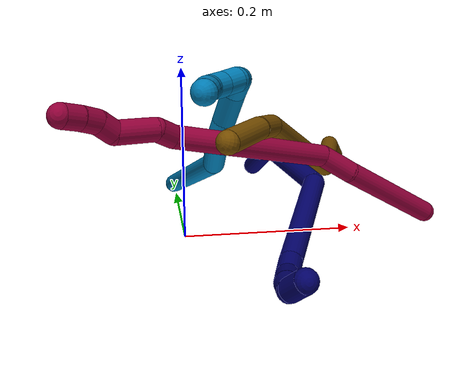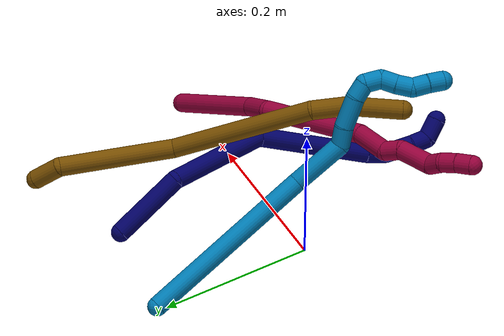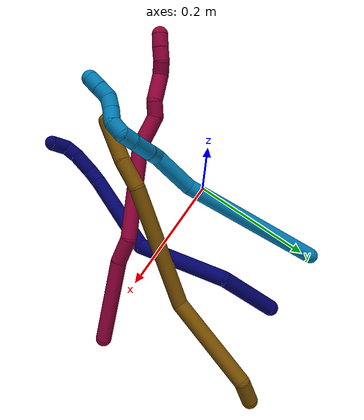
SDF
<sdf version="1.7">
 <world name="default">
  <model name="7">
   <static>0</static>
   <link name="7">
    <collision name="collision-cylinder-e_1_1_4">
     <pose>0.001157 0.00813 -0.047289 -2.97133 0.02411 -0.280687</pose>
     <geometry><cylinder><radius>0.0125</radius><length>0.095993</length></cylinder></geometry>
     <surface>
      <friction><ode><mu>1.16</mu><mu2>1.16</mu2><slip1>0</slip1><slip2>0</slip2></ode></friction>
      <contact><ode><kp>1e+06</kp><kd>1</kd><max_vel>0</max_vel><min_depth>0.001</min_depth></ode></contact>
     </surface>
    </collision>
    <visual name="visual-cylinder-e_1_1_4">
     <pose>0.001157 0.00813 -0.047289 -2.97133 0.02411 -0.280687</pose>
     <geometry><cylinder><radius>0.0125</radius><length>0.095993</length></cylinder></geometry>
     <material><ambient>0.003922 0 0.403922 1</ambient></material>
    </visual>
    <collision name="collision-cylinder-e_2_4_5">
     <pose>-0.016366 -0.007334 -0.159147 2.79126 -0.26532 -1.29213</pose>
     <geometry><cylinder><radius>0.0125</radius><length>0.142476</length></cylinder></geometry>
     <surface>
      <friction><ode><mu>1.16</mu><mu2>1.16</mu2><slip1>0</slip1><slip2>0</slip2></ode></friction>
      <contact><ode><kp>1e+06</kp><kd>1</kd><max_vel>0</max_vel><min_depth>0.001</min_depth></ode></contact>
     </surface>
    </collision>
    <visual name="visual-cylinder-e_2_4_5">
     <pose>-0.016366 -0.007334 -0.159147 2.79126 -0.26532 -1.29213</pose>
     <geometry><cylinder><radius>0.0125</radius><length>0.142476</length></cylinder></geometry>
     <material><ambient>0.003922 0 0.403922 1</ambient></material>
    </visual>
    <collision name="collision-cylinder-e_3_5_6">
     <pose>-0.019154 -0.080722 -0.27674 2.38758 0.215089 0.532391</pose>
     <geometry><cylinder><radius>0.0125</radius><length>0.14891</length></cylinder></geometry>
     <surface>
      <friction><ode><mu>1.16</mu><mu2>1.16</mu2><slip1>0</slip1><slip2>0</slip2></ode></friction>
      <contact><ode><kp>1e+06</kp><kd>1</kd><max_vel>0</max_vel><min_depth>0.001</min_depth></ode></contact>
     </surface>
    </collision>
    <visual name="visual-cylinder-e_3_5_6">
     <pose>-0.019154 -0.080722 -0.27674 2.38758 0.215089 0.532391</pose>
     <geometry><cylinder><radius>0.0125</radius><length>0.14891</length></cylinder></geometry>
     <material><ambient>0.003922 0 0.403922 1</ambient></material>
    </visual>
    <collision name="collision-cylinder-e_4_6_7">
     <pose>-0.000645 -0.137986 -0.340349 2.52711 0.199436 0.610921</pose>
     <geometry><cylinder><radius>0.0125</radius><length>0.026435</length></cylinder></geometry>
     <surface>
      <friction><ode><mu>1.16</mu><mu2>1.16</mu2><slip1>0</slip1><slip2>0</slip2></ode></friction>
      <contact><ode><kp>1e+06</kp><kd>1</kd><max_vel>0</max_vel><min_depth>0.001</min_depth></ode></contact>
     </surface>
    </collision>
    <visual name="visual-cylinder-e_4_6_7">
     <pose>-0.000645 -0.137986 -0.340349 2.52711 0.199436 0.610921</pose>
     <geometry><cylinder><radius>0.0125</radius><length>0.026435</length></cylinder></geometry>
     <material><ambient>0.003922 0 0.403922 1</ambient></material>
    </visual>
    <collision name="collision-cylinder-e_5_7_8">
     <pose>0.006281 -0.149434 -0.36851 2.91901 0.234607 1.62386</pose>
     <geometry><cylinder><radius>0.0125</radius><length>0.037055</length></cylinder></geometry>
     <surface>
      <friction><ode><mu>1.16</mu><mu2>1.16</mu2><slip1>0</slip1><slip2>0</slip2></ode></friction>
      <contact><ode><kp>1e+06</kp><kd>1</kd><max_vel>0</max_vel><min_depth>0.001</min_depth></ode></contact>
     </surface>
    </collision>
    <visual name="visual-cylinder-e_5_7_8">
     <pose>0.006281 -0.149434 -0.36851 2.91901 0.234607 1.62386</pose>
     <geometry><cylinder><radius>0.0125</radius><length>0.037055</length></cylinder></geometry>
     <material><ambient>0.003922 0 0.403922 1</ambient></material>
    </visual>
    <collision name="collision-cylinder-e_6_8_9">
     <pose>0.01131 -0.156104 -0.39675 2.89428 0.065563 0.515924</pose>
     <geometry><cylinder><radius>0.0125</radius><length>0.022047</length></cylinder></geometry>
     <surface>
      <friction><ode><mu>1.16</mu><mu2>1.16</mu2><slip1>0</slip1><slip2>0</slip2></ode></friction>
      <contact><ode><kp>1e+06</kp><kd>1</kd><max_vel>0</max_vel><min_depth>0.001</min_depth></ode></contact>
     </surface>
    </collision>
    <visual name="visual-cylinder-e_6_8_9">
     <pose>0.01131 -0.156104 -0.39675 2.89428 0.065563 0.515924</pose>
     <geometry><cylinder><radius>0.0125</radius><length>0.022047</length></cylinder></geometry>
     <material><ambient>0.003922 0 0.403922 1</ambient></material>
    </visual>
    <collision name="collision-cylinder-e_7_9_2">
     <pose>0.00943 -0.153222 -0.41948 -2.70872 -0.193367 0.830833</pose>
     <geometry><cylinder><radius>0.0125</radius><length>0.027084</length></cylinder></geometry>
     <surface>
      <friction><ode><mu>1.16</mu><mu2>1.16</mu2><slip1>0</slip1><slip2>0</slip2></ode></friction>
      <contact><ode><kp>1e+06</kp><kd>1</kd><max_vel>0</max_vel><min_depth>0.001</min_depth></ode></contact>
     </surface>
    </collision>
    <visual name="visual-cylinder-e_7_9_2">
     <pose>0.00943 -0.153222 -0.41948 -2.70872 -0.193367 0.830833</pose>
     <geometry><cylinder><radius>0.0125</radius><length>0.027084</length></cylinder></geometry>
     <material><ambient>0.003922 0 0.403922 1</ambient></material>
    </visual>
    <collision name="collision-sphere-2">
     <pose>0.006828 -0.147647 -0.431544 0 -0 0</pose>
     <geometry><sphere><radius>0.0125</radius></sphere></geometry>
     <surface>
      <friction><ode><mu>1.16</mu><mu2>1.16</mu2><slip1>0</slip1><slip2>0</slip2></ode></friction>
      <contact><ode><kp>1e+06</kp><kd>1</kd><max_vel>0</max_vel><min_depth>0.001</min_depth></ode></contact>
     </surface>
    </collision>
    <visual name="visual-sphere-2">
     <pose>0.006828 -0.147647 -0.431544 0 -0 0</pose>
     <geometry><sphere><radius>0.0125</radius></sphere></geometry>
     <material><ambient>0.003922 0 0.403922 1</ambient></material>
    </visual>
    <collision name="collision-sphere-9">
     <pose>0.012032 -0.158797 -0.407416 0 -0 0</pose>
     <geometry><sphere><radius>0.0125</radius></sphere></geometry>
     <surface>
      <friction><ode><mu>1.16</mu><mu2>1.16</mu2><slip1>0</slip1><slip2>0</slip2></ode></friction>
      <contact><ode><kp>1e+06</kp><kd>1</kd><max_vel>0</max_vel><min_depth>0.001</min_depth></ode></contact>
     </surface>
    </collision>
    <visual name="visual-sphere-9">
     <pose>0.012032 -0.158797 -0.407416 0 -0 0</pose>
     <geometry><sphere><radius>0.0125</radius></sphere></geometry>
     <material><ambient>0.003922 0 0.403922 1</ambient></material>
    </visual>
    <collision name="collision-sphere-4">
     <pose>0.002314 0.01626 -0.094578 0 -0 0</pose>
     <geometry><sphere><radius>0.0125</radius></sphere></geometry>
     <surface>
      <friction><ode><mu>1.16</mu><mu2>1.16</mu2><slip1>0</slip1><slip2>0</slip2></ode></friction>
      <contact><ode><kp>1e+06</kp><kd>1</kd><max_vel>0</max_vel><min_depth>0.001</min_depth></ode></contact>
     </surface>
    </collision>
    <visual name="visual-sphere-4">
     <pose>0.002314 0.01626 -0.094578 0 -0 0</pose>
     <geometry><sphere><radius>0.0125</radius></sphere></geometry>
     <material><ambient>0.003922 0 0.403922 1</ambient></material>
    </visual>
    <collision name="collision-sphere-1">
     <geometry><sphere><radius>0.0125</radius></sphere></geometry>
     <surface>
      <friction><ode><mu>1.16</mu><mu2>1.16</mu2><slip1>0</slip1><slip2>0</slip2></ode></friction>
      <contact><ode><kp>1e+06</kp><kd>1</kd><max_vel>0</max_vel><min_depth>0.001</min_depth></ode></contact>
     </surface>
    </collision>
    <visual name="visual-sphere-1">
     <geometry><sphere><radius>0.0125</radius></sphere></geometry>
     <material><ambient>0.003922 0 0.403922 1</ambient></material>
    </visual>
    <collision name="collision-sphere-8">
     <pose>0.010588 -0.153411 -0.386085 0 -0 0</pose>
     <geometry><sphere><radius>0.0125</radius></sphere></geometry>
     <surface>
      <friction><ode><mu>1.16</mu><mu2>1.16</mu2><slip1>0</slip1><slip2>0</slip2></ode></friction>
      <contact><ode><kp>1e+06</kp><kd>1</kd><max_vel>0</max_vel><min_depth>0.001</min_depth></ode></contact>
     </surface>
    </collision>
    <visual name="visual-sphere-8">
     <pose>0.010588 -0.153411 -0.386085 0 -0 0</pose>
     <geometry><sphere><radius>0.0125</radius></sphere></geometry>
     <material><ambient>0.003922 0 0.403922 1</ambient></material>
    </visual>
    <collision name="collision-sphere-5">
     <pose>-0.035046 -0.030927 -0.223717 0 -0 0</pose>
     <geometry><sphere><radius>0.0125</radius></sphere></geometry>
     <surface>
      <friction><ode><mu>1.16</mu><mu2>1.16</mu2><slip1>0</slip1><slip2>0</slip2></ode></friction>
      <contact><ode><kp>1e+06</kp><kd>1</kd><max_vel>0</max_vel><min_depth>0.001</min_depth></ode></contact>
     </surface>
    </collision>
    <visual name="visual-sphere-5">
     <pose>-0.035046 -0.030927 -0.223717 0 -0 0</pose>
     <geometry><sphere><radius>0.0125</radius></sphere></geometry>
     <material><ambient>0.003922 0 0.403922 1</ambient></material>
    </visual>
    <collision name="collision-sphere-6">
     <pose>-0.003263 -0.130517 -0.329763 0 -0 0</pose>
     <geometry><sphere><radius>0.0125</radius></sphere></geometry>
     <surface>
      <friction><ode><mu>1.16</mu><mu2>1.16</mu2><slip1>0</slip1><slip2>0</slip2></ode></friction>
      <contact><ode><kp>1e+06</kp><kd>1</kd><max_vel>0</max_vel><min_depth>0.001</min_depth></ode></contact>
     </surface>
    </collision>
    <visual name="visual-sphere-6">
     <pose>-0.003263 -0.130517 -0.329763 0 -0 0</pose>
     <geometry><sphere><radius>0.0125</radius></sphere></geometry>
     <material><ambient>0.003922 0 0.403922 1</ambient></material>
    </visual>
    <collision name="collision-sphere-7">
     <pose>0.001974 -0.145456 -0.350935 0 -0 0</pose>
     <geometry><sphere><radius>0.0125</radius></sphere></geometry>
     <surface>
      <friction><ode><mu>1.16</mu><mu2>1.16</mu2><slip1>0</slip1><slip2>0</slip2></ode></friction>
      <contact><ode><kp>1e+06</kp><kd>1</kd><max_vel>0</max_vel><min_depth>0.001</min_depth></ode></contact>
     </surface>
    </collision>
    <visual name="visual-sphere-7">
     <pose>0.001974 -0.145456 -0.350935 0 -0 0</pose>
     <geometry><sphere><radius>0.0125</radius></sphere></geometry>
     <material><ambient>0.003922 0 0.403922 1</ambient></material>
    </visual>
    <inertial>
     <pose>-0.008705 -0.058122 -0.222368 0 -0 0</pose>
     <mass>0.5</mass>
     <inertia>
      <ixx>0.000281</ixx>
      <ixy>0</ixy>
      <ixz>0</ixz>
      <iyy>-0.000388</iyy>
      <iyz>0</iyz>
      <izz>0.000226</izz>
     </inertia>
    </inertial>
   </link>
   <pose>0.112621 0.20486 0.036252 1.89291 -0.339179 3.10781</pose>
  </model>
  <model name="8">
   <static>0</static>
   <link name="8">
    <collision name="collision-cylinder-e_1_1_4">
     <pose>-0.035453 -0.045202 -0.036002 2.24338 -0.550297 -1.05977</pose>
     <geometry><cylinder><radius>0.0125</radius><length>0.135592</length></cylinder></geometry>
     <surface>
      <friction><ode><mu>1.16</mu><mu2>1.16</mu2><slip1>0</slip1><slip2>0</slip2></ode></friction>
      <contact><ode><kp>1e+06</kp><kd>1</kd><max_vel>0</max_vel><min_depth>0.001</min_depth></ode></contact>
     </surface>
    </collision>
    <visual name="visual-cylinder-e_1_1_4">
     <pose>-0.035453 -0.045202 -0.036002 2.24338 -0.550297 -1.05977</pose>
     <geometry><cylinder><radius>0.0125</radius><length>0.135592</length></cylinder></geometry>
     <material><ambient>0.584314 0 0.227451 1</ambient></material>
    </visual>
    <collision name="collision-cylinder-e_2_4_5">
     <pose>-0.081154 -0.107026 -0.079457 1.99229 -0.512422 -0.768847</pose>
     <geometry><cylinder><radius>0.0125</radius><length>0.041803</length></cylinder></geometry>
     <surface>
      <friction><ode><mu>1.16</mu><mu2>1.16</mu2><slip1>0</slip1><slip2>0</slip2></ode></friction>
      <contact><ode><kp>1e+06</kp><kd>1</kd><max_vel>0</max_vel><min_depth>0.001</min_depth></ode></contact>
     </surface>
    </collision>
    <visual name="visual-cylinder-e_2_4_5">
     <pose>-0.081154 -0.107026 -0.079457 1.99229 -0.512422 -0.768847</pose>
     <geometry><cylinder><radius>0.0125</radius><length>0.041803</length></cylinder></geometry>
     <material><ambient>0.584314 0 0.227451 1</ambient></material>
    </visual>
    <collision name="collision-cylinder-e_3_5_6">
     <pose>-0.142541 -0.155053 -0.126209 2.46739 -0.793607 -1.74849</pose>
     <geometry><cylinder><radius>0.0125</radius><length>0.143469</length></cylinder></geometry>
     <surface>
      <friction><ode><mu>1.16</mu><mu2>1.16</mu2><slip1>0</slip1><slip2>0</slip2></ode></friction>
      <contact><ode><kp>1e+06</kp><kd>1</kd><max_vel>0</max_vel><min_depth>0.001</min_depth></ode></contact>
     </surface>
    </collision>
    <visual name="visual-cylinder-e_3_5_6">
     <pose>-0.142541 -0.155053 -0.126209 2.46739 -0.793607 -1.74849</pose>
     <geometry><cylinder><radius>0.0125</radius><length>0.143469</length></cylinder></geometry>
     <material><ambient>0.584314 0 0.227451 1</ambient></material>
    </visual>
    <collision name="collision-cylinder-e_4_6_7">
     <pose>-0.213095 -0.201144 -0.171522 1.95942 -0.885577 -1.23023</pose>
     <geometry><cylinder><radius>0.0125</radius><length>0.050153</length></cylinder></geometry>
     <surface>
      <friction><ode><mu>1.16</mu><mu2>1.16</mu2><slip1>0</slip1><slip2>0</slip2></ode></friction>
      <contact><ode><kp>1e+06</kp><kd>1</kd><max_vel>0</max_vel><min_depth>0.001</min_depth></ode></contact>
     </surface>
    </collision>
    <visual name="visual-cylinder-e_4_6_7">
     <pose>-0.213095 -0.201144 -0.171522 1.95942 -0.885577 -1.23023</pose>
     <geometry><cylinder><radius>0.0125</radius><length>0.050153</length></cylinder></geometry>
     <material><ambient>0.584314 0 0.227451 1</ambient></material>
    </visual>
    <collision name="collision-cylinder-e_5_7_8">
     <pose>-0.238489 -0.221593 -0.186212 2.55537 -0.52099 -1.4469</pose>
     <geometry><cylinder><radius>0.0125</radius><length>0.02402</length></cylinder></geometry>
     <surface>
      <friction><ode><mu>1.16</mu><mu2>1.16</mu2><slip1>0</slip1><slip2>0</slip2></ode></friction>
      <contact><ode><kp>1e+06</kp><kd>1</kd><max_vel>0</max_vel><min_depth>0.001</min_depth></ode></contact>
     </surface>
    </collision>
    <visual name="visual-cylinder-e_5_7_8">
     <pose>-0.238489 -0.221593 -0.186212 2.55537 -0.52099 -1.4469</pose>
     <geometry><cylinder><radius>0.0125</radius><length>0.02402</length></cylinder></geometry>
     <material><ambient>0.584314 0 0.227451 1</ambient></material>
    </visual>
    <collision name="collision-cylinder-e_6_8_9">
     <pose>-0.263031 -0.234651 -0.203914 2.46176 -1.01212 -2.00564</pose>
     <geometry><cylinder><radius>0.0125</radius><length>0.043785</length></cylinder></geometry>
     <surface>
      <friction><ode><mu>1.16</mu><mu2>1.16</mu2><slip1>0</slip1><slip2>0</slip2></ode></friction>
      <contact><ode><kp>1e+06</kp><kd>1</kd><max_vel>0</max_vel><min_depth>0.001</min_depth></ode></contact>
     </surface>
    </collision>
    <visual name="visual-cylinder-e_6_8_9">
     <pose>-0.263031 -0.234651 -0.203914 2.46176 -1.01212 -2.00564</pose>
     <geometry><cylinder><radius>0.0125</radius><length>0.043785</length></cylinder></geometry>
     <material><ambient>0.584314 0 0.227451 1</ambient></material>
    </visual>
    <collision name="collision-cylinder-e_7_9_10">
     <pose>-0.28555 -0.248776 -0.21961 2.34444 -0.392686 -0.882535</pose>
     <geometry><cylinder><radius>0.0125</radius><length>0.020668</length></cylinder></geometry>
     <surface>
      <friction><ode><mu>1.16</mu><mu2>1.16</mu2><slip1>0</slip1><slip2>0</slip2></ode></friction>
      <contact><ode><kp>1e+06</kp><kd>1</kd><max_vel>0</max_vel><min_depth>0.001</min_depth></ode></contact>
     </surface>
    </collision>
    <visual name="visual-cylinder-e_7_9_10">
     <pose>-0.28555 -0.248776 -0.21961 2.34444 -0.392686 -0.882535</pose>
     <geometry><cylinder><radius>0.0125</radius><length>0.020668</length></cylinder></geometry>
     <material><ambient>0.584314 0 0.227451 1</ambient></material>
    </visual>
    <collision name="collision-cylinder-e_8_10_11">
     <pose>-0.295558 -0.259359 -0.233518 2.66317 -0.638731 -1.87069</pose>
     <geometry><cylinder><radius>0.0125</radius><length>0.020307</length></cylinder></geometry>
     <surface>
      <friction><ode><mu>1.16</mu><mu2>1.16</mu2><slip1>0</slip1><slip2>0</slip2></ode></friction>
      <contact><ode><kp>1e+06</kp><kd>1</kd><max_vel>0</max_vel><min_depth>0.001</min_depth></ode></contact>
     </surface>
    </collision>
    <visual name="visual-cylinder-e_8_10_11">
     <pose>-0.295558 -0.259359 -0.233518 2.66317 -0.638731 -1.87069</pose>
     <geometry><cylinder><radius>0.0125</radius><length>0.020307</length></cylinder></geometry>
     <material><ambient>0.584314 0 0.227451 1</ambient></material>
    </visual>
    <collision name="collision-cylinder-e_9_11_2">
     <pose>-0.30832 -0.266565 -0.24747 2.66667 -0.726388 -2.00748</pose>
     <geometry><cylinder><radius>0.0125</radius><length>0.020203</length></cylinder></geometry>
     <surface>
      <friction><ode><mu>1.16</mu><mu2>1.16</mu2><slip1>0</slip1><slip2>0</slip2></ode></friction>
      <contact><ode><kp>1e+06</kp><kd>1</kd><max_vel>0</max_vel><min_depth>0.001</min_depth></ode></contact>
     </surface>
    </collision>
    <visual name="visual-cylinder-e_9_11_2">
     <pose>-0.30832 -0.266565 -0.24747 2.66667 -0.726388 -2.00748</pose>
     <geometry><cylinder><radius>0.0125</radius><length>0.020203</length></cylinder></geometry>
     <material><ambient>0.584314 0 0.227451 1</ambient></material>
    </visual>
    <collision name="collision-sphere-2">
     <pose>-0.315029 -0.270018 -0.254186 0 -0 0</pose>
     <geometry><sphere><radius>0.0125</radius></sphere></geometry>
     <surface>
      <friction><ode><mu>1.16</mu><mu2>1.16</mu2><slip1>0</slip1><slip2>0</slip2></ode></friction>
      <contact><ode><kp>1e+06</kp><kd>1</kd><max_vel>0</max_vel><min_depth>0.001</min_depth></ode></contact>
     </surface>
    </collision>
    <visual name="visual-sphere-2">
     <pose>-0.315029 -0.270018 -0.254186 0 -0 0</pose>
     <geometry><sphere><radius>0.0125</radius></sphere></geometry>
     <material><ambient>0.584314 0 0.227451 1</ambient></material>
    </visual>
    <collision name="collision-sphere-11">
     <pose>-0.301611 -0.263112 -0.240754 0 -0 0</pose>
     <geometry><sphere><radius>0.0125</radius></sphere></geometry>
     <surface>
      <friction><ode><mu>1.16</mu><mu2>1.16</mu2><slip1>0</slip1><slip2>0</slip2></ode></friction>
      <contact><ode><kp>1e+06</kp><kd>1</kd><max_vel>0</max_vel><min_depth>0.001</min_depth></ode></contact>
     </surface>
    </collision>
    <visual name="visual-sphere-11">
     <pose>-0.301611 -0.263112 -0.240754 0 -0 0</pose>
     <geometry><sphere><radius>0.0125</radius></sphere></geometry>
     <material><ambient>0.584314 0 0.227451 1</ambient></material>
    </visual>
    <collision name="collision-sphere-10">
     <pose>-0.289504 -0.255606 -0.226281 0 -0 0</pose>
     <geometry><sphere><radius>0.0125</radius></sphere></geometry>
     <surface>
      <friction><ode><mu>1.16</mu><mu2>1.16</mu2><slip1>0</slip1><slip2>0</slip2></ode></friction>
      <contact><ode><kp>1e+06</kp><kd>1</kd><max_vel>0</max_vel><min_depth>0.001</min_depth></ode></contact>
     </surface>
    </collision>
    <visual name="visual-sphere-10">
     <pose>-0.289504 -0.255606 -0.226281 0 -0 0</pose>
     <geometry><sphere><radius>0.0125</radius></sphere></geometry>
     <material><ambient>0.584314 0 0.227451 1</ambient></material>
    </visual>
    <collision name="collision-sphere-9">
     <pose>-0.281595 -0.241946 -0.212938 0 -0 0</pose>
     <geometry><sphere><radius>0.0125</radius></sphere></geometry>
     <surface>
      <friction><ode><mu>1.16</mu><mu2>1.16</mu2><slip1>0</slip1><slip2>0</slip2></ode></friction>
      <contact><ode><kp>1e+06</kp><kd>1</kd><max_vel>0</max_vel><min_depth>0.001</min_depth></ode></contact>
     </surface>
    </collision>
    <visual name="visual-sphere-9">
     <pose>-0.281595 -0.241946 -0.212938 0 -0 0</pose>
     <geometry><sphere><radius>0.0125</radius></sphere></geometry>
     <material><ambient>0.584314 0 0.227451 1</ambient></material>
    </visual>
    <collision name="collision-sphere-4">
     <pose>-0.070907 -0.090404 -0.072004 0 -0 0</pose>
     <geometry><sphere><radius>0.0125</radius></sphere></geometry>
     <surface>
      <friction><ode><mu>1.16</mu><mu2>1.16</mu2><slip1>0</slip1><slip2>0</slip2></ode></friction>
      <contact><ode><kp>1e+06</kp><kd>1</kd><max_vel>0</max_vel><min_depth>0.001</min_depth></ode></contact>
     </surface>
    </collision>
    <visual name="visual-sphere-4">
     <pose>-0.070907 -0.090404 -0.072004 0 -0 0</pose>
     <geometry><sphere><radius>0.0125</radius></sphere></geometry>
     <material><ambient>0.584314 0 0.227451 1</ambient></material>
    </visual>
    <collision name="collision-sphere-1">
     <geometry><sphere><radius>0.0125</radius></sphere></geometry>
     <surface>
      <friction><ode><mu>1.16</mu><mu2>1.16</mu2><slip1>0</slip1><slip2>0</slip2></ode></friction>
      <contact><ode><kp>1e+06</kp><kd>1</kd><max_vel>0</max_vel><min_depth>0.001</min_depth></ode></contact>
     </surface>
    </collision>
    <visual name="visual-sphere-1">
     <geometry><sphere><radius>0.0125</radius></sphere></geometry>
     <material><ambient>0.584314 0 0.227451 1</ambient></material>
    </visual>
    <collision name="collision-sphere-8">
     <pose>-0.244467 -0.227356 -0.194889 0 -0 0</pose>
     <geometry><sphere><radius>0.0125</radius></sphere></geometry>
     <surface>
      <friction><ode><mu>1.16</mu><mu2>1.16</mu2><slip1>0</slip1><slip2>0</slip2></ode></friction>
      <contact><ode><kp>1e+06</kp><kd>1</kd><max_vel>0</max_vel><min_depth>0.001</min_depth></ode></contact>
     </surface>
    </collision>
    <visual name="visual-sphere-8">
     <pose>-0.244467 -0.227356 -0.194889 0 -0 0</pose>
     <geometry><sphere><radius>0.0125</radius></sphere></geometry>
     <material><ambient>0.584314 0 0.227451 1</ambient></material>
    </visual>
    <collision name="collision-sphere-5">
     <pose>-0.091402 -0.123649 -0.08691 0 -0 0</pose>
     <geometry><sphere><radius>0.0125</radius></sphere></geometry>
     <surface>
      <friction><ode><mu>1.16</mu><mu2>1.16</mu2><slip1>0</slip1><slip2>0</slip2></ode></friction>
      <contact><ode><kp>1e+06</kp><kd>1</kd><max_vel>0</max_vel><min_depth>0.001</min_depth></ode></contact>
     </surface>
    </collision>
    <visual name="visual-sphere-5">
     <pose>-0.091402 -0.123649 -0.08691 0 -0 0</pose>
     <geometry><sphere><radius>0.0125</radius></sphere></geometry>
     <material><ambient>0.584314 0 0.227451 1</ambient></material>
    </visual>
    <collision name="collision-sphere-6">
     <pose>-0.193679 -0.186458 -0.165508 0 -0 0</pose>
     <geometry><sphere><radius>0.0125</radius></sphere></geometry>
     <surface>
      <friction><ode><mu>1.16</mu><mu2>1.16</mu2><slip1>0</slip1><slip2>0</slip2></ode></friction>
      <contact><ode><kp>1e+06</kp><kd>1</kd><max_vel>0</max_vel><min_depth>0.001</min_depth></ode></contact>
     </surface>
    </collision>
    <visual name="visual-sphere-6">
     <pose>-0.193679 -0.186458 -0.165508 0 -0 0</pose>
     <geometry><sphere><radius>0.0125</radius></sphere></geometry>
     <material><ambient>0.584314 0 0.227451 1</ambient></material>
    </visual>
    <collision name="collision-sphere-7">
     <pose>-0.232512 -0.21583 -0.177535 0 -0 0</pose>
     <geometry><sphere><radius>0.0125</radius></sphere></geometry>
     <surface>
      <friction><ode><mu>1.16</mu><mu2>1.16</mu2><slip1>0</slip1><slip2>0</slip2></ode></friction>
      <contact><ode><kp>1e+06</kp><kd>1</kd><max_vel>0</max_vel><min_depth>0.001</min_depth></ode></contact>
     </surface>
    </collision>
    <visual name="visual-sphere-7">
     <pose>-0.232512 -0.21583 -0.177535 0 -0 0</pose>
     <geometry><sphere><radius>0.0125</radius></sphere></geometry>
     <material><ambient>0.584314 0 0.227451 1</ambient></material>
    </visual>
    <inertial>
     <pose>-0.14943 -0.148654 -0.125189 0 -0 0</pose>
     <mass>0.5</mass>
     <inertia>
      <ixx>-0.000315</ixx>
      <ixy>0</ixy>
      <ixz>0</ixz>
      <iyy>-0.000203</iyy>
      <iyz>0</iyz>
      <izz>0.000567</izz>
     </inertia>
    </inertial>
   </link>
   <pose>0.303541 0.012162 0.011501 -2.06123 -0.498596 0.189522</pose>
  </model>
  <model name="9">
   <static>0</static>
   <link name="9">
    <collision name="collision-cylinder-e_1_1_4">
     <pose>-0.079731 -0.002774 0.08807 0.031491 -0.735495 -0.012133</pose>
     <geometry><cylinder><radius>0.0125</radius><length>0.237664</length></cylinder></geometry>
     <surface>
      <friction><ode><mu>1.16</mu><mu2>1.16</mu2><slip1>0</slip1><slip2>0</slip2></ode></friction>
      <contact><ode><kp>1e+06</kp><kd>1</kd><max_vel>0</max_vel><min_depth>0.001</min_depth></ode></contact>
     </surface>
    </collision>
    <visual name="visual-cylinder-e_1_1_4">
     <pose>-0.079731 -0.002774 0.08807 0.031491 -0.735495 -0.012133</pose>
     <geometry><cylinder><radius>0.0125</radius><length>0.237664</length></cylinder></geometry>
     <material><ambient>0 0.490196 0.709804 1</ambient></material>
    </visual>
    <collision name="collision-cylinder-e_2_4_5">
     <pose>-0.180082 -0.0156 0.204123 0.344854 -0.606363 -0.108853</pose>
     <geometry><cylinder><radius>0.0125</radius><length>0.072367</length></cylinder></geometry>
     <surface>
      <friction><ode><mu>1.16</mu><mu2>1.16</mu2><slip1>0</slip1><slip2>0</slip2></ode></friction>
      <contact><ode><kp>1e+06</kp><kd>1</kd><max_vel>0</max_vel><min_depth>0.001</min_depth></ode></contact>
     </surface>
    </collision>
    <visual name="visual-cylinder-e_2_4_5">
     <pose>-0.180082 -0.0156 0.204123 0.344854 -0.606363 -0.108853</pose>
     <geometry><cylinder><radius>0.0125</radius><length>0.072367</length></cylinder></geometry>
     <material><ambient>0 0.490196 0.709804 1</ambient></material>
    </visual>
    <collision name="collision-cylinder-e_3_5_6">
     <pose>-0.209956 -0.034104 0.234807 1.26134 -0.806319 -0.603808</pose>
     <geometry><cylinder><radius>0.0125</radius><length>0.025642</length></cylinder></geometry>
     <surface>
      <friction><ode><mu>1.16</mu><mu2>1.16</mu2><slip1>0</slip1><slip2>0</slip2></ode></friction>
      <contact><ode><kp>1e+06</kp><kd>1</kd><max_vel>0</max_vel><min_depth>0.001</min_depth></ode></contact>
     </surface>
    </collision>
    <visual name="visual-cylinder-e_3_5_6">
     <pose>-0.209956 -0.034104 0.234807 1.26134 -0.806319 -0.603808</pose>
     <geometry><cylinder><radius>0.0125</radius><length>0.025642</length></cylinder></geometry>
     <material><ambient>0 0.490196 0.709804 1</ambient></material>
    </visual>
    <collision name="collision-cylinder-e_4_6_7">
     <pose>-0.233994 -0.053874 0.245001 0.986052 -0.828136 -0.463751</pose>
     <geometry><cylinder><radius>0.0125</radius><length>0.040139</length></cylinder></geometry>
     <surface>
      <friction><ode><mu>1.16</mu><mu2>1.16</mu2><slip1>0</slip1><slip2>0</slip2></ode></friction>
      <contact><ode><kp>1e+06</kp><kd>1</kd><max_vel>0</max_vel><min_depth>0.001</min_depth></ode></contact>
     </surface>
    </collision>
    <visual name="visual-cylinder-e_4_6_7">
     <pose>-0.233994 -0.053874 0.245001 0.986052 -0.828136 -0.463751</pose>
     <geometry><cylinder><radius>0.0125</radius><length>0.040139</length></cylinder></geometry>
     <material><ambient>0 0.490196 0.709804 1</ambient></material>
    </visual>
    <collision name="collision-cylinder-e_5_7_8">
     <pose>-0.256593 -0.069399 0.258428 0.616853 -0.821127 -0.27561</pose>
     <geometry><cylinder><radius>0.0125</radius><length>0.021355</length></cylinder></geometry>
     <surface>
      <friction><ode><mu>1.16</mu><mu2>1.16</mu2><slip1>0</slip1><slip2>0</slip2></ode></friction>
      <contact><ode><kp>1e+06</kp><kd>1</kd><max_vel>0</max_vel><min_depth>0.001</min_depth></ode></contact>
     </surface>
    </collision>
    <visual name="visual-cylinder-e_5_7_8">
     <pose>-0.256593 -0.069399 0.258428 0.616853 -0.821127 -0.27561</pose>
     <geometry><cylinder><radius>0.0125</radius><length>0.021355</length></cylinder></geometry>
     <material><ambient>0 0.490196 0.709804 1</ambient></material>
    </visual>
    <collision name="collision-cylinder-e_6_8_9">
     <pose>-0.267305 -0.073057 0.274802 -0.052703 -0.270312 0.007168</pose>
     <geometry><cylinder><radius>0.0125</radius><length>0.021696</length></cylinder></geometry>
     <surface>
      <friction><ode><mu>1.16</mu><mu2>1.16</mu2><slip1>0</slip1><slip2>0</slip2></ode></friction>
      <contact><ode><kp>1e+06</kp><kd>1</kd><max_vel>0</max_vel><min_depth>0.001</min_depth></ode></contact>
     </surface>
    </collision>
    <visual name="visual-cylinder-e_6_8_9">
     <pose>-0.267305 -0.073057 0.274802 -0.052703 -0.270312 0.007168</pose>
     <geometry><cylinder><radius>0.0125</radius><length>0.021696</length></cylinder></geometry>
     <material><ambient>0 0.490196 0.709804 1</ambient></material>
    </visual>
    <collision name="collision-cylinder-e_7_9_10">
     <pose>-0.266544 -0.072165 0.294864 -0.035461 0.362974 -0.006508</pose>
     <geometry><cylinder><radius>0.0125</radius><length>0.020601</length></cylinder></geometry>
     <surface>
      <friction><ode><mu>1.16</mu><mu2>1.16</mu2><slip1>0</slip1><slip2>0</slip2></ode></friction>
      <contact><ode><kp>1e+06</kp><kd>1</kd><max_vel>0</max_vel><min_depth>0.001</min_depth></ode></contact>
     </surface>
    </collision>
    <visual name="visual-cylinder-e_7_9_10">
     <pose>-0.266544 -0.072165 0.294864 -0.035461 0.362974 -0.006508</pose>
     <geometry><cylinder><radius>0.0125</radius><length>0.020601</length></cylinder></geometry>
     <material><ambient>0 0.490196 0.709804 1</ambient></material>
    </visual>
    <collision name="collision-cylinder-e_8_10_11">
     <pose>-0.260472 -0.071584 0.314403 -0.024144 0.23878 -0.002897</pose>
     <geometry><cylinder><radius>0.0125</radius><length>0.020415</length></cylinder></geometry>
     <surface>
      <friction><ode><mu>1.16</mu><mu2>1.16</mu2><slip1>0</slip1><slip2>0</slip2></ode></friction>
      <contact><ode><kp>1e+06</kp><kd>1</kd><max_vel>0</max_vel><min_depth>0.001</min_depth></ode></contact>
     </surface>
    </collision>
    <visual name="visual-cylinder-e_8_10_11">
     <pose>-0.260472 -0.071584 0.314403 -0.024144 0.23878 -0.002897</pose>
     <geometry><cylinder><radius>0.0125</radius><length>0.020415</length></cylinder></geometry>
     <material><ambient>0 0.490196 0.709804 1</ambient></material>
    </visual>
    <collision name="collision-cylinder-e_9_11_12">
     <pose>-0.261047 -0.070316 0.333816 -0.107857 -0.303199 0.016493</pose>
     <geometry><cylinder><radius>0.0125</radius><length>0.020021</length></cylinder></geometry>
     <surface>
      <friction><ode><mu>1.16</mu><mu2>1.16</mu2><slip1>0</slip1><slip2>0</slip2></ode></friction>
      <contact><ode><kp>1e+06</kp><kd>1</kd><max_vel>0</max_vel><min_depth>0.001</min_depth></ode></contact>
     </surface>
    </collision>
    <visual name="visual-cylinder-e_9_11_12">
     <pose>-0.261047 -0.070316 0.333816 -0.107857 -0.303199 0.016493</pose>
     <geometry><cylinder><radius>0.0125</radius><length>0.020021</length></cylinder></geometry>
     <material><ambient>0 0.490196 0.709804 1</ambient></material>
    </visual>
    <collision name="collision-cylinder-e_10_12_2">
     <pose>-0.266563 -0.067415 0.35286 -0.193786 -0.254141 0.024834</pose>
     <geometry><cylinder><radius>0.0125</radius><length>0.020101</length></cylinder></geometry>
     <surface>
      <friction><ode><mu>1.16</mu><mu2>1.16</mu2><slip1>0</slip1><slip2>0</slip2></ode></friction>
      <contact><ode><kp>1e+06</kp><kd>1</kd><max_vel>0</max_vel><min_depth>0.001</min_depth></ode></contact>
     </surface>
    </collision>
    <visual name="visual-cylinder-e_10_12_2">
     <pose>-0.266563 -0.067415 0.35286 -0.193786 -0.254141 0.024834</pose>
     <geometry><cylinder><radius>0.0125</radius><length>0.020101</length></cylinder></geometry>
     <material><ambient>0 0.490196 0.709804 1</ambient></material>
    </visual>
    <collision name="collision-sphere-2">
     <pose>-0.26909 -0.065541 0.362406 0 -0 0</pose>
     <geometry><sphere><radius>0.0125</radius></sphere></geometry>
     <surface>
      <friction><ode><mu>1.16</mu><mu2>1.16</mu2><slip1>0</slip1><slip2>0</slip2></ode></friction>
      <contact><ode><kp>1e+06</kp><kd>1</kd><max_vel>0</max_vel><min_depth>0.001</min_depth></ode></contact>
     </surface>
    </collision>
    <visual name="visual-sphere-2">
     <pose>-0.26909 -0.065541 0.362406 0 -0 0</pose>
     <geometry><sphere><radius>0.0125</radius></sphere></geometry>
     <material><ambient>0 0.490196 0.709804 1</ambient></material>
    </visual>
    <collision name="collision-sphere-12">
     <pose>-0.264036 -0.069288 0.343314 0 -0 0</pose>
     <geometry><sphere><radius>0.0125</radius></sphere></geometry>
     <surface>
      <friction><ode><mu>1.16</mu><mu2>1.16</mu2><slip1>0</slip1><slip2>0</slip2></ode></friction>
      <contact><ode><kp>1e+06</kp><kd>1</kd><max_vel>0</max_vel><min_depth>0.001</min_depth></ode></contact>
     </surface>
    </collision>
    <visual name="visual-sphere-12">
     <pose>-0.264036 -0.069288 0.343314 0 -0 0</pose>
     <geometry><sphere><radius>0.0125</radius></sphere></geometry>
     <material><ambient>0 0.490196 0.709804 1</ambient></material>
    </visual>
    <collision name="collision-sphere-11">
     <pose>-0.258058 -0.071345 0.324318 0 -0 0</pose>
     <geometry><sphere><radius>0.0125</radius></sphere></geometry>
     <surface>
      <friction><ode><mu>1.16</mu><mu2>1.16</mu2><slip1>0</slip1><slip2>0</slip2></ode></friction>
      <contact><ode><kp>1e+06</kp><kd>1</kd><max_vel>0</max_vel><min_depth>0.001</min_depth></ode></contact>
     </surface>
    </collision>
    <visual name="visual-sphere-11">
     <pose>-0.258058 -0.071345 0.324318 0 -0 0</pose>
     <geometry><sphere><radius>0.0125</radius></sphere></geometry>
     <material><ambient>0 0.490196 0.709804 1</ambient></material>
    </visual>
    <collision name="collision-sphere-10">
     <pose>-0.262887 -0.071824 0.304488 0 -0 0</pose>
     <geometry><sphere><radius>0.0125</radius></sphere></geometry>
     <surface>
      <friction><ode><mu>1.16</mu><mu2>1.16</mu2><slip1>0</slip1><slip2>0</slip2></ode></friction>
      <contact><ode><kp>1e+06</kp><kd>1</kd><max_vel>0</max_vel><min_depth>0.001</min_depth></ode></contact>
     </surface>
    </collision>
    <visual name="visual-sphere-10">
     <pose>-0.262887 -0.071824 0.304488 0 -0 0</pose>
     <geometry><sphere><radius>0.0125</radius></sphere></geometry>
     <material><ambient>0 0.490196 0.709804 1</ambient></material>
    </visual>
    <collision name="collision-sphere-9">
     <pose>-0.270201 -0.072507 0.285241 0 -0 0</pose>
     <geometry><sphere><radius>0.0125</radius></sphere></geometry>
     <surface>
      <friction><ode><mu>1.16</mu><mu2>1.16</mu2><slip1>0</slip1><slip2>0</slip2></ode></friction>
      <contact><ode><kp>1e+06</kp><kd>1</kd><max_vel>0</max_vel><min_depth>0.001</min_depth></ode></contact>
     </surface>
    </collision>
    <visual name="visual-sphere-9">
     <pose>-0.270201 -0.072507 0.285241 0 -0 0</pose>
     <geometry><sphere><radius>0.0125</radius></sphere></geometry>
     <material><ambient>0 0.490196 0.709804 1</ambient></material>
    </visual>
    <collision name="collision-sphere-4">
     <pose>-0.159462 -0.005549 0.17614 0 -0 0</pose>
     <geometry><sphere><radius>0.0125</radius></sphere></geometry>
     <surface>
      <friction><ode><mu>1.16</mu><mu2>1.16</mu2><slip1>0</slip1><slip2>0</slip2></ode></friction>
      <contact><ode><kp>1e+06</kp><kd>1</kd><max_vel>0</max_vel><min_depth>0.001</min_depth></ode></contact>
     </surface>
    </collision>
    <visual name="visual-sphere-4">
     <pose>-0.159462 -0.005549 0.17614 0 -0 0</pose>
     <geometry><sphere><radius>0.0125</radius></sphere></geometry>
     <material><ambient>0 0.490196 0.709804 1</ambient></material>
    </visual>
    <collision name="collision-sphere-1">
     <geometry><sphere><radius>0.0125</radius></sphere></geometry>
     <surface>
      <friction><ode><mu>1.16</mu><mu2>1.16</mu2><slip1>0</slip1><slip2>0</slip2></ode></friction>
      <contact><ode><kp>1e+06</kp><kd>1</kd><max_vel>0</max_vel><min_depth>0.001</min_depth></ode></contact>
     </surface>
    </collision>
    <visual name="visual-sphere-1">
     <geometry><sphere><radius>0.0125</radius></sphere></geometry>
     <material><ambient>0 0.490196 0.709804 1</ambient></material>
    </visual>
    <collision name="collision-sphere-8">
     <pose>-0.264408 -0.073608 0.264362 0 -0 0</pose>
     <geometry><sphere><radius>0.0125</radius></sphere></geometry>
     <surface>
      <friction><ode><mu>1.16</mu><mu2>1.16</mu2><slip1>0</slip1><slip2>0</slip2></ode></friction>
      <contact><ode><kp>1e+06</kp><kd>1</kd><max_vel>0</max_vel><min_depth>0.001</min_depth></ode></contact>
     </surface>
    </collision>
    <visual name="visual-sphere-8">
     <pose>-0.264408 -0.073608 0.264362 0 -0 0</pose>
     <geometry><sphere><radius>0.0125</radius></sphere></geometry>
     <material><ambient>0 0.490196 0.709804 1</ambient></material>
    </visual>
    <collision name="collision-sphere-5">
     <pose>-0.200702 -0.025652 0.232105 0 -0 0</pose>
     <geometry><sphere><radius>0.0125</radius></sphere></geometry>
     <surface>
      <friction><ode><mu>1.16</mu><mu2>1.16</mu2><slip1>0</slip1><slip2>0</slip2></ode></friction>
      <contact><ode><kp>1e+06</kp><kd>1</kd><max_vel>0</max_vel><min_depth>0.001</min_depth></ode></contact>
     </surface>
    </collision>
    <visual name="visual-sphere-5">
     <pose>-0.200702 -0.025652 0.232105 0 -0 0</pose>
     <geometry><sphere><radius>0.0125</radius></sphere></geometry>
     <material><ambient>0 0.490196 0.709804 1</ambient></material>
    </visual>
    <collision name="collision-sphere-6">
     <pose>-0.219209 -0.042557 0.23751 0 -0 0</pose>
     <geometry><sphere><radius>0.0125</radius></sphere></geometry>
     <surface>
      <friction><ode><mu>1.16</mu><mu2>1.16</mu2><slip1>0</slip1><slip2>0</slip2></ode></friction>
      <contact><ode><kp>1e+06</kp><kd>1</kd><max_vel>0</max_vel><min_depth>0.001</min_depth></ode></contact>
     </surface>
    </collision>
    <visual name="visual-sphere-6">
     <pose>-0.219209 -0.042557 0.23751 0 -0 0</pose>
     <geometry><sphere><radius>0.0125</radius></sphere></geometry>
     <material><ambient>0 0.490196 0.709804 1</ambient></material>
    </visual>
    <collision name="collision-sphere-7">
     <pose>-0.248778 -0.065191 0.252493 0 -0 0</pose>
     <geometry><sphere><radius>0.0125</radius></sphere></geometry>
     <surface>
      <friction><ode><mu>1.16</mu><mu2>1.16</mu2><slip1>0</slip1><slip2>0</slip2></ode></friction>
      <contact><ode><kp>1e+06</kp><kd>1</kd><max_vel>0</max_vel><min_depth>0.001</min_depth></ode></contact>
     </surface>
    </collision>
    <visual name="visual-sphere-7">
     <pose>-0.248778 -0.065191 0.252493 0 -0 0</pose>
     <geometry><sphere><radius>0.0125</radius></sphere></geometry>
     <material><ambient>0 0.490196 0.709804 1</ambient></material>
    </visual>
    <inertial>
     <pose>-0.158858 -0.027206 0.178615 0 -0 0</pose>
     <mass>0.5</mass>
     <inertia>
      <ixx>0.000841</ixx>
      <ixy>0</ixy>
      <ixz>0</ixz>
      <iyy>0.001155</iyy>
      <iyz>0</iyz>
      <izz>0.000855</izz>
     </inertia>
    </inertial>
   </link>
   <pose>-0.001735 0.214447 0.011803 -1.51915 0.417248 2.63167</pose>
  </model>
  <model name="12">
   <static>0</static>
   <link name="12">
    <collision name="collision-cylinder-e_1_1_4">
     <pose>0.002222 -0.009017 -0.016805 2.64911 0.115995 0.454057</pose>
     <geometry><cylinder><radius>0.0125</radius><length>0.038401</length></cylinder></geometry>
     <surface>
      <friction><ode><mu>1.16</mu><mu2>1.16</mu2><slip1>0</slip1><slip2>0</slip2></ode></friction>
      <contact><ode><kp>1e+06</kp><kd>1</kd><max_vel>0</max_vel><min_depth>0.001</min_depth></ode></contact>
     </surface>
    </collision>
    <visual name="visual-cylinder-e_1_1_4">
     <pose>0.002222 -0.009017 -0.016805 2.64911 0.115995 0.454057</pose>
     <geometry><cylinder><radius>0.0125</radius><length>0.038401</length></cylinder></geometry>
     <material><ambient>0.466667 0.301961 0 1</ambient></material>
    </visual>
    <collision name="collision-cylinder-e_2_4_5">
     <pose>0.05351 -0.027634 -0.089834 2.97249 0.710406 2.69232</pose>
     <geometry><cylinder><radius>0.0125</radius><length>0.150474</length></cylinder></geometry>
     <surface>
      <friction><ode><mu>1.16</mu><mu2>1.16</mu2><slip1>0</slip1><slip2>0</slip2></ode></friction>
      <contact><ode><kp>1e+06</kp><kd>1</kd><max_vel>0</max_vel><min_depth>0.001</min_depth></ode></contact>
     </surface>
    </collision>
    <visual name="visual-cylinder-e_2_4_5">
     <pose>0.05351 -0.027634 -0.089834 2.97249 0.710406 2.69232</pose>
     <geometry><cylinder><radius>0.0125</radius><length>0.150474</length></cylinder></geometry>
     <material><ambient>0.466667 0.301961 0 1</ambient></material>
    </visual>
    <collision name="collision-cylinder-e_3_5_6">
     <pose>0.121733 -0.065717 -0.237215 2.83874 0.197974 1.15391</pose>
     <geometry><cylinder><radius>0.0125</radius><length>0.194814</length></cylinder></geometry>
     <surface>
      <friction><ode><mu>1.16</mu><mu2>1.16</mu2><slip1>0</slip1><slip2>0</slip2></ode></friction>
      <contact><ode><kp>1e+06</kp><kd>1</kd><max_vel>0</max_vel><min_depth>0.001</min_depth></ode></contact>
     </surface>
    </collision>
    <visual name="visual-cylinder-e_3_5_6">
     <pose>0.121733 -0.065717 -0.237215 2.83874 0.197974 1.15391</pose>
     <geometry><cylinder><radius>0.0125</radius><length>0.194814</length></cylinder></geometry>
     <material><ambient>0.466667 0.301961 0 1</ambient></material>
    </visual>
    <collision name="collision-cylinder-e_4_6_7">
     <pose>0.152329 -0.096846 -0.348357 3.01 0.516096 2.65229</pose>
     <geometry><cylinder><radius>0.0125</radius><length>0.046354</length></cylinder></geometry>
     <surface>
      <friction><ode><mu>1.16</mu><mu2>1.16</mu2><slip1>0</slip1><slip2>0</slip2></ode></friction>
      <contact><ode><kp>1e+06</kp><kd>1</kd><max_vel>0</max_vel><min_depth>0.001</min_depth></ode></contact>
     </surface>
    </collision>
    <visual name="visual-cylinder-e_4_6_7">
     <pose>0.152329 -0.096846 -0.348357 3.01 0.516096 2.65229</pose>
     <geometry><cylinder><radius>0.0125</radius><length>0.046354</length></cylinder></geometry>
     <material><ambient>0.466667 0.301961 0 1</ambient></material>
    </visual>
    <collision name="collision-cylinder-e_5_7_2">
     <pose>0.180368 -0.096992 -0.399027 -3.06036 0.494522 -2.82234</pose>
     <geometry><cylinder><radius>0.0125</radius><length>0.069956</length></cylinder></geometry>
     <surface>
      <friction><ode><mu>1.16</mu><mu2>1.16</mu2><slip1>0</slip1><slip2>0</slip2></ode></friction>
      <contact><ode><kp>1e+06</kp><kd>1</kd><max_vel>0</max_vel><min_depth>0.001</min_depth></ode></contact>
     </surface>
    </collision>
    <visual name="visual-cylinder-e_5_7_2">
     <pose>0.180368 -0.096992 -0.399027 -3.06036 0.494522 -2.82234</pose>
     <geometry><cylinder><radius>0.0125</radius><length>0.069956</length></cylinder></geometry>
     <material><ambient>0.466667 0.301961 0 1</ambient></material>
    </visual>
    <collision name="collision-sphere-2">
     <pose>0.196969 -0.094494 -0.429713 0 -0 0</pose>
     <geometry><sphere><radius>0.0125</radius></sphere></geometry>
     <surface>
      <friction><ode><mu>1.16</mu><mu2>1.16</mu2><slip1>0</slip1><slip2>0</slip2></ode></friction>
      <contact><ode><kp>1e+06</kp><kd>1</kd><max_vel>0</max_vel><min_depth>0.001</min_depth></ode></contact>
     </surface>
    </collision>
    <visual name="visual-sphere-2">
     <pose>0.196969 -0.094494 -0.429713 0 -0 0</pose>
     <geometry><sphere><radius>0.0125</radius></sphere></geometry>
     <material><ambient>0.466667 0.301961 0 1</ambient></material>
    </visual>
    <collision name="collision-sphere-7">
     <pose>0.163767 -0.099491 -0.368341 0 -0 0</pose>
     <geometry><sphere><radius>0.0125</radius></sphere></geometry>
     <surface>
      <friction><ode><mu>1.16</mu><mu2>1.16</mu2><slip1>0</slip1><slip2>0</slip2></ode></friction>
      <contact><ode><kp>1e+06</kp><kd>1</kd><max_vel>0</max_vel><min_depth>0.001</min_depth></ode></contact>
     </surface>
    </collision>
    <visual name="visual-sphere-7">
     <pose>0.163767 -0.099491 -0.368341 0 -0 0</pose>
     <geometry><sphere><radius>0.0125</radius></sphere></geometry>
     <material><ambient>0.466667 0.301961 0 1</ambient></material>
    </visual>
    <collision name="collision-sphere-6">
     <pose>0.140892 -0.094201 -0.328373 0 -0 0</pose>
     <geometry><sphere><radius>0.0125</radius></sphere></geometry>
     <surface>
      <friction><ode><mu>1.16</mu><mu2>1.16</mu2><slip1>0</slip1><slip2>0</slip2></ode></friction>
      <contact><ode><kp>1e+06</kp><kd>1</kd><max_vel>0</max_vel><min_depth>0.001</min_depth></ode></contact>
     </surface>
    </collision>
    <visual name="visual-sphere-6">
     <pose>0.140892 -0.094201 -0.328373 0 -0 0</pose>
     <geometry><sphere><radius>0.0125</radius></sphere></geometry>
     <material><ambient>0.466667 0.301961 0 1</ambient></material>
    </visual>
    <collision name="collision-sphere-5">
     <pose>0.102575 -0.037234 -0.146057 0 -0 0</pose>
     <geometry><sphere><radius>0.0125</radius></sphere></geometry>
     <surface>
      <friction><ode><mu>1.16</mu><mu2>1.16</mu2><slip1>0</slip1><slip2>0</slip2></ode></friction>
      <contact><ode><kp>1e+06</kp><kd>1</kd><max_vel>0</max_vel><min_depth>0.001</min_depth></ode></contact>
     </surface>
    </collision>
    <visual name="visual-sphere-5">
     <pose>0.102575 -0.037234 -0.146057 0 -0 0</pose>
     <geometry><sphere><radius>0.0125</radius></sphere></geometry>
     <material><ambient>0.466667 0.301961 0 1</ambient></material>
    </visual>
    <collision name="collision-sphere-1">
     <geometry><sphere><radius>0.0125</radius></sphere></geometry>
     <surface>
      <friction><ode><mu>1.16</mu><mu2>1.16</mu2><slip1>0</slip1><slip2>0</slip2></ode></friction>
      <contact><ode><kp>1e+06</kp><kd>1</kd><max_vel>0</max_vel><min_depth>0.001</min_depth></ode></contact>
     </surface>
    </collision>
    <visual name="visual-sphere-1">
     <geometry><sphere><radius>0.0125</radius></sphere></geometry>
     <material><ambient>0.466667 0.301961 0 1</ambient></material>
    </visual>
    <collision name="collision-sphere-4">
     <pose>0.004444 -0.018035 -0.03361 0 -0 0</pose>
     <geometry><sphere><radius>0.0125</radius></sphere></geometry>
     <surface>
      <friction><ode><mu>1.16</mu><mu2>1.16</mu2><slip1>0</slip1><slip2>0</slip2></ode></friction>
      <contact><ode><kp>1e+06</kp><kd>1</kd><max_vel>0</max_vel><min_depth>0.001</min_depth></ode></contact>
     </surface>
    </collision>
    <visual name="visual-sphere-4">
     <pose>0.004444 -0.018035 -0.03361 0 -0 0</pose>
     <geometry><sphere><radius>0.0125</radius></sphere></geometry>
     <material><ambient>0.466667 0.301961 0 1</ambient></material>
    </visual>
    <inertial>
     <pose>0.103063 -0.057163 -0.208876 0 -0 0</pose>
     <mass>0.5</mass>
     <inertia>
      <ixx>0.00069</ixx>
      <ixy>0</ixy>
      <ixz>0</ixz>
      <iyy>0.000743</iyy>
      <iyz>0</iyz>
      <izz>-0.000145</izz>
     </inertia>
    </inertial>
   </link>
   <pose>0.250022 0.25579 0.03579 -1.93561 0.531081 -1.15004</pose>
  </model>
 </world>
</sdf>
